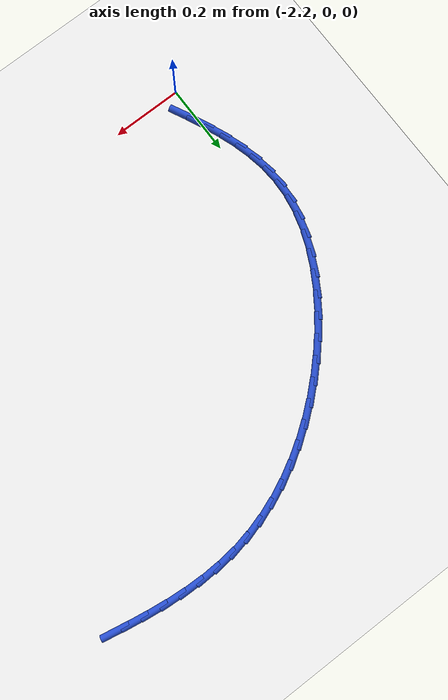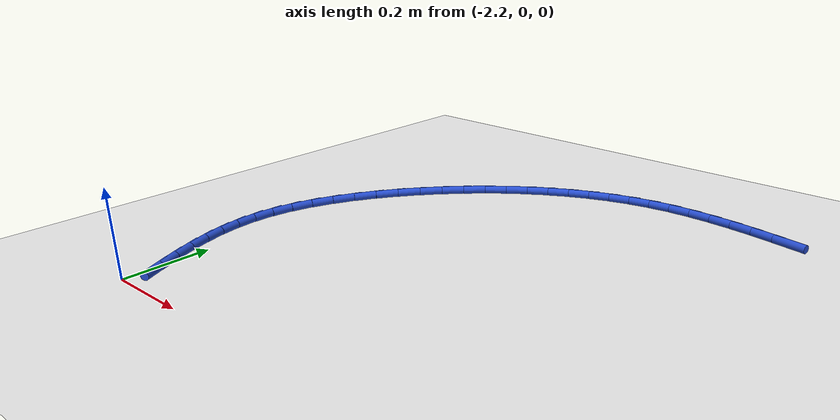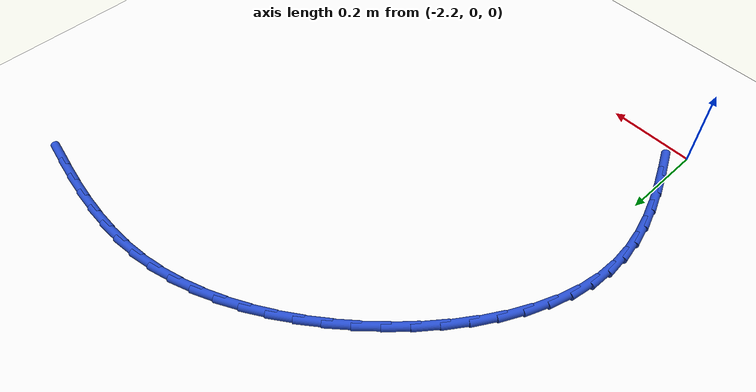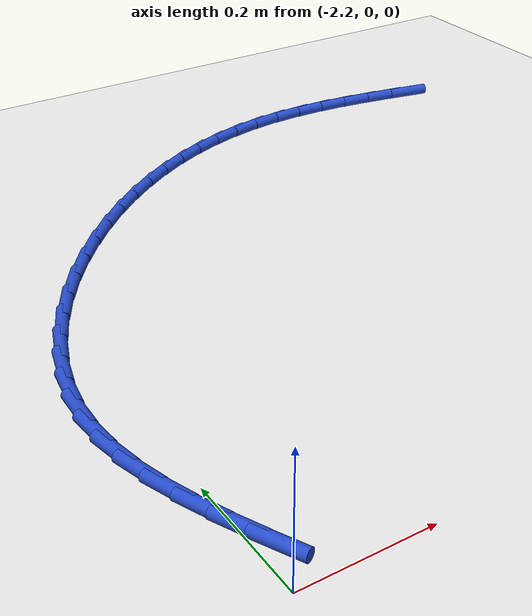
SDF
<sdf version="1.6">
 <world name="default">
  <model name="ground_plane">
   <static>1</static>
   <link name="link">
    <collision name="collision">
     <geometry><plane><normal>0 0 1</normal><size>100 100</size></plane></geometry>
     <surface><friction><ode><mu>100</mu><mu2>50</mu2></ode></friction></surface>
    </collision>
    <visual name="visual">
     <cast_shadows>0</cast_shadows>
     <geometry><plane><normal>0 0 1</normal><size>100 100</size></plane></geometry>
     <material>
      <script><uri>file://media/materials/scripts/gazebo.material</uri><name>Gazebo/WhiteGlow</name></script>
     </material>
    </visual>
   </link>
  </model>
  <model name="line">
   <link name="link_32">
    <pose>-1.2120177514087886 1.0503980498966217 0.01 0 1.57 -0.18611557041173857</pose>
    <collision name="collision">
     <geometry><cylinder><radius>0.01</radius><length>0.08</length></cylinder></geometry>
    </collision>
    <visual name="visual">
     <material>
      <script><name>Gazebo/Blue</name><uri>file://media/materials/scripts/gazebo.material</uri></script>
     </material>
     <geometry><cylinder><radius>0.01</radius><length>0.08</length></cylinder></geometry>
    </visual>
   </link>
   <link name="link_33">
    <pose>-1.266627381888703 1.0606807550651025 0.01 0 1.57 -0.1594308341964699</pose>
    <collision name="collision">
     <geometry><cylinder><radius>0.01</radius><length>0.08</length></cylinder></geometry>
    </collision>
    <visual name="visual">
     <material>
      <script><name>Gazebo/Blue</name><uri>file://media/materials/scripts/gazebo.material</uri></script>
     </material>
     <geometry><cylinder><radius>0.01</radius><length>0.08</length></cylinder></geometry>
    </visual>
   </link>
   <link name="link_34">
    <pose>-1.321331481402864 1.0694769294951825 0.01 0 1.57 -0.12337987375990202</pose>
    <collision name="collision">
     <geometry><cylinder><radius>0.01</radius><length>0.08</length></cylinder></geometry>
    </collision>
    <visual name="visual">
     <material>
      <script><name>Gazebo/Blue</name><uri>file://media/materials/scripts/gazebo.material</uri></script>
     </material>
     <geometry><cylinder><radius>0.01</radius><length>0.08</length></cylinder></geometry>
    </visual>
   </link>
   <link name="link_35">
    <pose>-1.3759954604421056 1.0762557965988993 0.01 0 1.57 -0.07748886933711063</pose>
    <collision name="collision">
     <geometry><cylinder><radius>0.01</radius><length>0.08</length></cylinder></geometry>
    </collision>
    <visual name="visual">
     <material>
      <script><name>Gazebo/Blue</name><uri>file://media/materials/scripts/gazebo.material</uri></script>
     </material>
     <geometry><cylinder><radius>0.01</radius><length>0.08</length></cylinder></geometry>
    </visual>
   </link>
   <link name="link_36">
    <pose>-1.4304847294972611 1.0804865797882903 0.01 0 1.57 -0.021257840763834038</pose>
    <collision name="collision">
     <geometry><cylinder><radius>0.01</radius><length>0.08</length></cylinder></geometry>
    </collision>
    <visual name="visual">
     <material>
      <script><name>Gazebo/Blue</name><uri>file://media/materials/scripts/gazebo.material</uri></script>
     </material>
     <geometry><cylinder><radius>0.01</radius><length>0.08</length></cylinder></geometry>
    </visual>
   </link>
   <link name="link_37">
    <pose>-1.4846646990591656 1.0816385024753934 0.01 0 1.57 0.04570491187184855</pose>
    <collision name="collision">
     <geometry><cylinder><radius>0.01</radius><length>0.08</length></cylinder></geometry>
    </collision>
    <visual name="visual">
     <material>
      <script><name>Gazebo/Blue</name><uri>file://media/materials/scripts/gazebo.material</uri></script>
     </material>
     <geometry><cylinder><radius>0.01</radius><length>0.08</length></cylinder></geometry>
    </visual>
   </link>
   <link name="link_38">
    <pose>-1.5384007796186536 1.0791807880722466 0.01 0 1.57 0.12342919603851595</pose>
    <collision name="collision">
     <geometry><cylinder><radius>0.01</radius><length>0.08</length></cylinder></geometry>
    </collision>
    <visual name="visual">
     <material>
      <script><name>Gazebo/Blue</name><uri>file://media/materials/scripts/gazebo.material</uri></script>
     </material>
     <geometry><cylinder><radius>0.01</radius><length>0.08</length></cylinder></geometry>
    </visual>
   </link>
   <link name="link_39">
    <pose>-1.5915584651987884 1.0725860538694059 0.01 0 1.57 0.2067872684919719</pose>
    <collision name="collision">
     <geometry><cylinder><radius>0.01</radius><length>0.08</length></cylinder></geometry>
    </collision>
    <visual name="visual">
     <material>
      <script><name>Gazebo/Blue</name><uri>file://media/materials/scripts/gazebo.material</uri></script>
     </material>
     <geometry><cylinder><radius>0.01</radius><length>0.08</length></cylinder></geometry>
    </visual>
   </link>
   <link name="link_40">
    <pose>-1.6440095416138585 1.0615825499266305 0.01 0 1.57 0.28730302925081097</pose>
    <collision name="collision">
     <geometry><cylinder><radius>0.01</radius><length>0.08</length></cylinder></geometry>
    </collision>
    <visual name="visual">
     <material>
      <script><name>Gazebo/Blue</name><uri>file://media/materials/scripts/gazebo.material</uri></script>
     </material>
     <geometry><cylinder><radius>0.01</radius><length>0.08</length></cylinder></geometry>
    </visual>
   </link>
   <link name="link_41">
    <pose>-1.6956363641502403 1.0463279594049175 0.01 0 1.57 0.36394367895614893</pose>
    <collision name="collision">
     <geometry><cylinder><radius>0.01</radius><length>0.08</length></cylinder></geometry>
    </collision>
    <visual name="visual">
     <material>
      <script><name>Gazebo/Blue</name><uri>file://media/materials/scripts/gazebo.material</uri></script>
     </material>
     <geometry><cylinder><radius>0.01</radius><length>0.08</length></cylinder></geometry>
    </visual>
   </link>
   <link name="link_42">
    <pose>-1.7463223000060129 1.0270210790021543 0.01 0 1.57 0.4366345385401731</pose>
    <collision name="collision">
     <geometry><cylinder><radius>0.01</radius><length>0.08</length></cylinder></geometry>
    </collision>
    <visual name="visual">
     <material>
      <script><name>Gazebo/Blue</name><uri>file://media/materials/scripts/gazebo.material</uri></script>
     </material>
     <geometry><cylinder><radius>0.01</radius><length>0.08</length></cylinder></geometry>
    </visual>
   </link>
   <link name="link_43">
    <pose>-1.7959507163792532 1.0038607054162274 0.01 0 1.57 0.5054574161951496</pose>
    <collision name="collision">
     <geometry><cylinder><radius>0.01</radius><length>0.08</length></cylinder></geometry>
    </collision>
    <visual name="visual">
     <material>
      <script><name>Gazebo/Blue</name><uri>file://media/materials/scripts/gazebo.material</uri></script>
     </material>
     <geometry><cylinder><radius>0.01</radius><length>0.08</length></cylinder></geometry>
    </visual>
   </link>
   <link name="link_44">
    <pose>-1.8444049804680382 0.9770456353450234 0.01 0 1.57 0.5706108657587537</pose>
    <collision name="collision">
     <geometry><cylinder><radius>0.01</radius><length>0.08</length></cylinder></geometry>
    </collision>
    <visual name="visual">
     <material>
      <script><name>Gazebo/Blue</name><uri>file://media/materials/scripts/gazebo.material</uri></script>
     </material>
     <geometry><cylinder><radius>0.01</radius><length>0.08</length></cylinder></geometry>
    </visual>
   </link>
   <link name="link_45">
    <pose>-1.8915684594704492 0.9467746654864301 0.01 0 1.57 0.6323739327413231</pose>
    <collision name="collision">
     <geometry><cylinder><radius>0.01</radius><length>0.08</length></cylinder></geometry>
    </collision>
    <visual name="visual">
     <material>
      <script><name>Gazebo/Blue</name><uri>file://media/materials/scripts/gazebo.material</uri></script>
     </material>
     <geometry><cylinder><radius>0.01</radius><length>0.08</length></cylinder></geometry>
    </visual>
   </link>
   <link name="link_46">
    <pose>-1.9373245205845617 0.9132465925383332 0.01 0 1.57 0.6910762619135057</pose>
    <collision name="collision">
     <geometry><cylinder><radius>0.01</radius><length>0.08</length></cylinder></geometry>
    </collision>
    <visual name="visual">
     <material>
      <script><name>Gazebo/Blue</name><uri>file://media/materials/scripts/gazebo.material</uri></script>
     </material>
     <geometry><cylinder><radius>0.01</radius><length>0.08</length></cylinder></geometry>
    </visual>
   </link>
   <link name="link_47">
    <pose>-1.981556531008454 0.8766602131986196 0.01 0 1.57 0.7470929762275539</pose>
    <collision name="collision">
     <geometry><cylinder><radius>0.01</radius><length>0.08</length></cylinder></geometry>
    </collision>
    <visual name="visual">
     <material>
      <script><name>Gazebo/Blue</name><uri>file://media/materials/scripts/gazebo.material</uri></script>
     </material>
     <geometry><cylinder><radius>0.01</radius><length>0.08</length></cylinder></geometry>
    </visual>
   </link>
   <link name="link_48">
    <pose>-2.0241451883625605 0.8372154010402593 0.01 0 1.57 0.8018694195268823</pose>
    <collision name="collision">
     <geometry><cylinder><radius>0.01</radius><length>0.08</length></cylinder></geometry>
    </collision>
    <visual name="visual">
     <material>
      <script><name>Gazebo/Blue</name><uri>file://media/materials/scripts/gazebo.material</uri></script>
     </material>
     <geometry><cylinder><radius>0.01</radius><length>0.08</length></cylinder></geometry>
    </visual>
   </link>
   <link name="link_49">
    <pose>-2.064828055331123 0.7951697685247965 0.01 0 1.57 0.8579179159275178</pose>
    <collision name="collision">
     <geometry><cylinder><radius>0.01</radius><length>0.08</length></cylinder></geometry>
    </collision>
    <visual name="visual">
     <material>
      <script><name>Gazebo/Blue</name><uri>file://media/materials/scripts/gazebo.material</uri></script>
     </material>
     <geometry><cylinder><radius>0.01</radius><length>0.08</length></cylinder></geometry>
    </visual>
   </link>
   <link name="link_50">
    <pose>-2.103130115151362 0.7508666800715563 0.01 0 1.57 0.9166978734166766</pose>
    <collision name="collision">
     <geometry><cylinder><radius>0.01</radius><length>0.08</length></cylinder></geometry>
    </collision>
    <visual name="visual">
     <material>
      <script><name>Gazebo/Blue</name><uri>file://media/materials/scripts/gazebo.material</uri></script>
     </material>
     <geometry><cylinder><radius>0.01</radius><length>0.08</length></cylinder></geometry>
    </visual>
   </link>
   <link name="link_51">
    <pose>-2.1385591078233444 0.7046564558115517 0.01 0 1.57 0.9796267782068914</pose>
    <collision name="collision">
     <geometry><cylinder><radius>0.01</radius><length>0.08</length></cylinder></geometry>
    </collision>
    <visual name="visual">
     <material>
      <script><name>Gazebo/Blue</name><uri>file://media/materials/scripts/gazebo.material</uri></script>
     </material>
     <geometry><cylinder><radius>0.01</radius><length>0.08</length></cylinder></geometry>
    </visual>
   </link>
   <link name="link_52">
    <pose>-2.1706227733471395 0.6568894158757954 0.01 0 1.57 1.0482519070105902</pose>
    <collision name="collision">
     <geometry><cylinder><radius>0.01</radius><length>0.08</length></cylinder></geometry>
    </collision>
    <visual name="visual">
     <material>
      <script><name>Gazebo/Blue</name><uri>file://media/materials/scripts/gazebo.material</uri></script>
     </material>
     <geometry><cylinder><radius>0.01</radius><length>0.08</length></cylinder></geometry>
    </visual>
   </link>
   <link name="link_53">
    <pose>-2.1988288517228165 0.6079158803952998 0.01 0 1.57 1.1242885786277386</pose>
    <collision name="collision">
     <geometry><cylinder><radius>0.01</radius><length>0.08</length></cylinder></geometry>
    </collision>
    <visual name="visual">
     <material>
      <script><name>Gazebo/Blue</name><uri>file://media/materials/scripts/gazebo.material</uri></script>
     </material>
     <geometry><cylinder><radius>0.01</radius><length>0.08</length></cylinder></geometry>
    </visual>
   </link>
   <link name="link_54">
    <pose>-2.2226850829504445 0.5580861695010774 0.01 0 1.57 1.2096192453116243</pose>
    <collision name="collision">
     <geometry><cylinder><radius>0.01</radius><length>0.08</length></cylinder></geometry>
    </collision>
    <visual name="visual">
     <material>
      <script><name>Gazebo/Blue</name><uri>file://media/materials/scripts/gazebo.material</uri></script>
     </material>
     <geometry><cylinder><radius>0.01</radius><length>0.08</length></cylinder></geometry>
    </visual>
   </link>
   <link name="link_55">
    <pose>-2.241699207030092 0.5077506033241412 0.01 0 1.57 1.3062141430078562</pose>
    <collision name="collision">
     <geometry><cylinder><radius>0.01</radius><length>0.08</length></cylinder></geometry>
    </collision>
    <visual name="visual">
     <material>
      <script><name>Gazebo/Blue</name><uri>file://media/materials/scripts/gazebo.material</uri></script>
     </material>
     <geometry><cylinder><radius>0.01</radius><length>0.08</length></cylinder></geometry>
    </visual>
   </link>
   <link name="link_56">
    <pose>-2.2553789639618267 0.4572595019955038 0.01 0 1.57 1.4159096251478578</pose>
    <collision name="collision">
     <geometry><cylinder><radius>0.01</radius><length>0.08</length></cylinder></geometry>
    </collision>
    <visual name="visual">
     <material>
      <script><name>Gazebo/Blue</name><uri>file://media/materials/scripts/gazebo.material</uri></script>
     </material>
     <geometry><cylinder><radius>0.01</radius><length>0.08</length></cylinder></geometry>
    </visual>
   </link>
   <link name="link_57">
    <pose>-2.2632320937457178 0.4069631856461778 0.01 0 1.57 1.5380271278789017</pose>
    <collision name="collision">
     <geometry><cylinder><radius>0.01</radius><length>0.08</length></cylinder></geometry>
    </collision>
    <visual name="visual">
     <material>
      <script><name>Gazebo/Blue</name><uri>file://media/materials/scripts/gazebo.material</uri></script>
     </material>
     <geometry><cylinder><radius>0.01</radius><length>0.08</length></cylinder></geometry>
    </visual>
   </link>
   <link name="link_58">
    <pose>-2.264864303460312 0.3571717505980641 0.01 0 1.57 -1.485171005748711</pose>
    <collision name="collision">
     <geometry><cylinder><radius>0.01</radius><length>0.08</length></cylinder></geometry>
    </collision>
    <visual name="visual">
     <material>
      <script><name>Gazebo/Blue</name><uri>file://media/materials/scripts/gazebo.material</uri></script>
     </material>
     <geometry><cylinder><radius>0.01</radius><length>0.08</length></cylinder></geometry>
    </visual>
   </link>
   <link name="link_59">
    <pose>-2.260633876841278 0.307886296515528 0.01 0 1.57 -1.3812422458974762</pose>
    <collision name="collision">
     <geometry><cylinder><radius>0.01</radius><length>0.08</length></cylinder></geometry>
    </collision>
    <visual name="visual">
     <material>
      <script><name>Gazebo/Blue</name><uri>file://media/materials/scripts/gazebo.material</uri></script>
     </material>
     <geometry><cylinder><radius>0.01</radius><length>0.08</length></cylinder></geometry>
    </visual>
   </link>
   <link name="link_60">
    <pose>-2.2512479048978435 0.2589647080420685 0.01 0 1.57 -1.2940529824320273</pose>
    <collision name="collision">
     <geometry><cylinder><radius>0.01</radius><length>0.08</length></cylinder></geometry>
    </collision>
    <visual name="visual">
     <material>
      <script><name>Gazebo/Blue</name><uri>file://media/materials/scripts/gazebo.material</uri></script>
     </material>
     <geometry><cylinder><radius>0.01</radius><length>0.08</length></cylinder></geometry>
    </visual>
   </link>
   <link name="link_61">
    <pose>-2.2374153859965555 0.2102640866889534 0.01 0 1.57 -1.2240405433156545</pose>
    <collision name="collision">
     <geometry><cylinder><radius>0.01</radius><length>0.08</length></cylinder></geometry>
    </collision>
    <visual name="visual">
     <material>
      <script><name>Gazebo/Blue</name><uri>file://media/materials/scripts/gazebo.material</uri></script>
     </material>
     <geometry><cylinder><radius>0.01</radius><length>0.08</length></cylinder></geometry>
    </visual>
   </link>
   <link name="link_62">
    <pose>-2.2198453185039577 0.16164153396745068 0.01 0 1.57 -1.1705537586258155</pose>
    <collision name="collision">
     <geometry><cylinder><radius>0.01</radius><length>0.08</length></cylinder></geometry>
    </collision>
    <visual name="visual">
     <material>
      <script><name>Gazebo/Blue</name><uri>file://media/materials/scripts/gazebo.material</uri></script>
     </material>
     <geometry><cylinder><radius>0.01</radius><length>0.08</length></cylinder></geometry>
    </visual>
   </link>
   <link name="link_63">
    <pose>-2.1992467007865995 0.11295415138882889 0.01 0 1.57 -1.132483471122199</pose>
    <collision name="collision">
     <geometry><cylinder><radius>0.01</radius><length>0.08</length></cylinder></geometry>
    </collision>
    <visual name="visual">
     <material>
      <script><name>Gazebo/Blue</name><uri>file://media/materials/scripts/gazebo.material</uri></script>
     </material>
     <geometry><cylinder><radius>0.01</radius><length>0.08</length></cylinder></geometry>
    </visual>
   </link>
   <link name="link_64">
    <pose>-2.176328531211023 0.06405904046435675 0.01 0 1.57 -1.1086792914697343</pose>
    <collision name="collision">
     <geometry><cylinder><radius>0.01</radius><length>0.08</length></cylinder></geometry>
    </collision>
    <visual name="visual">
     <material>
      <script><name>Gazebo/Blue</name><uri>file://media/materials/scripts/gazebo.material</uri></script>
     </material>
     <geometry><cylinder><radius>0.01</radius><length>0.08</length></cylinder></geometry>
    </visual>
   </link>
  </model>
 </world>
</sdf>
